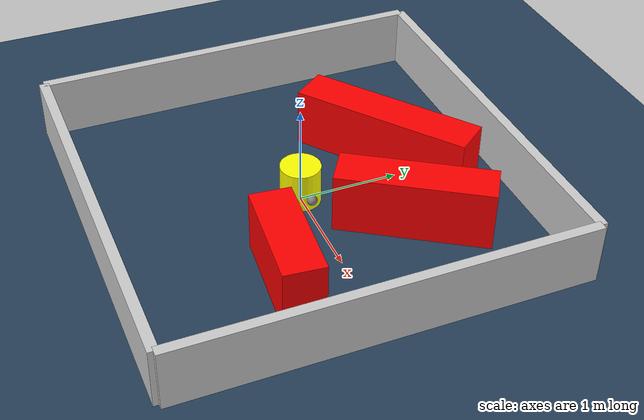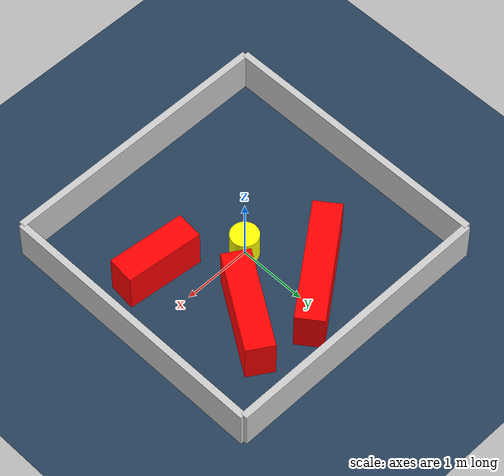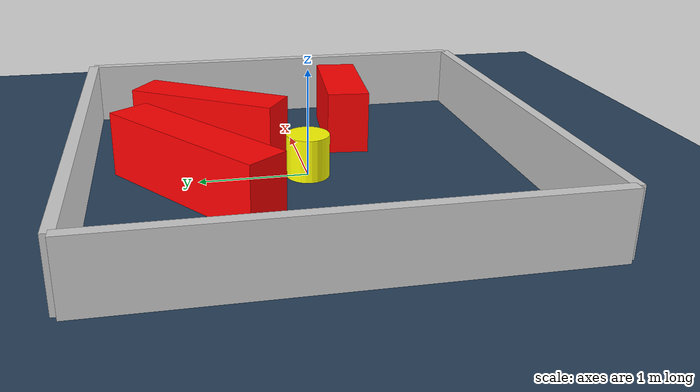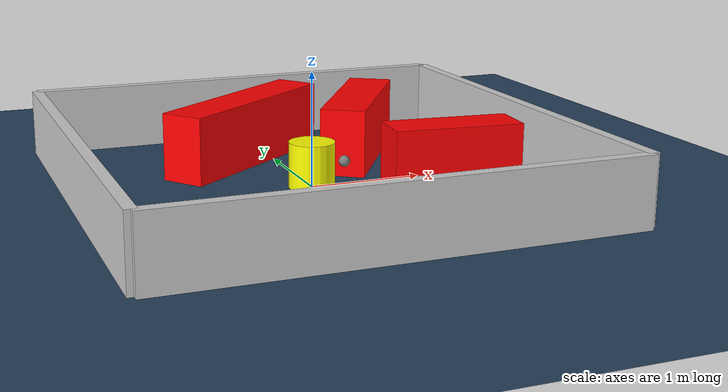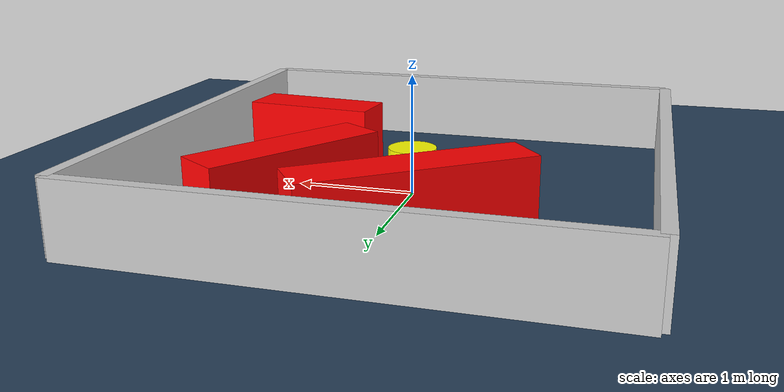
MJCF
<?xml version="1.0" ?>
<mujoco model="generated_environment">
  <option timestep="0.01" integrator="RK4" cone="elliptic"/>
  <default>
    <geom density="1"/>
  </default>
  <asset>
    <texture builtin="gradient" height="3072" rgb1="0.3 0.5 0.7" rgb2="0 0 0" type="skybox" width="512"/>
    <texture builtin="checker" height="300" mark="edge" markrgb="0.8 0.8 0.8" name="groundplane" rgb1="0.2 0.3 0.4" rgb2="0.1 0.2 0.3" type="2d" width="300"/>
    <material name="groundplane" reflectance="0.2" texrepeat="5 5" texture="groundplane" texuniform="true"/>
    <material name="robot" rgba="0.0 1.0 0.0 1"/>
  </asset>
  <worldbody>
    <light dir="0 0 -1" directional="true" pos="0 0 1.5"/>
    <geom condim="4" friction="1.0 0.005 0.001" material="groundplane" name="floor" size="0 0 0.05" type="plane"/>
    <body name="walls">
      <geom name="wall_1" condim="4" pos="-2.0 0.0 0.3" rgba="0.800000011920929 0.800000011920929 0.800000011920929 1.0" size="0.05 2.0 0.3" type="box"/>
      <geom name="wall_2" condim="4" pos="2.0 0.0 0.3" rgba="0.800000011920929 0.800000011920929 0.800000011920929 1.0" size="0.05 2.0 0.3" type="box"/>
      <geom name="wall_3" condim="4" pos="0.0 -2.0 0.3" rgba="0.800000011920929 0.800000011920929 0.800000011920929 1.0" size="2.0 0.05 0.3" type="box"/>
      <geom name="wall_4" condim="4" pos="0.0 2.0 0.3" rgba="0.800000011920929 0.800000011920929 0.800000011920929 1.0" size="2.0 0.05 0.3" type="box"/>
    </body>
    <body name="robot">
      <joint name="joint_x" type="slide" pos="0 0 0" axis="1 0 0"/>
      <joint name="joint_y" type="slide" pos="0 0 0" axis="0 1 0"/>
      <geom name="robot" type="sphere" pos="0.3 0.0 0.2" size="0.05" mass="5." friction="1.0 0.005 0.0001" condim="4" rgba="0.5 0.5 0.5 1.0"/>
      <site name="sensor_ball"/>
    </body>
    <body name="obstacle_movable_1">
      <geom name="obstacle_movable_1" condim="4" pos="0.0 0.0 0.2" euler="0 0 0.0" friction="1.0 0.005 0.001" rgba="1.0 1.0 0.0 1.0" size="0.2 0.2 0.0" type="cylinder" mass="0.1"/>
      <joint type="free"/>
    </body>
    <body name="obstacle_2_static">
      <geom name="obstacle_2_static" condim="4" pos="-0.2835630489167551 1.0416036369405 0.3" euler="0 0 36.946435420858364" friction="1.0 0.005 0.001" rgba="1 0 0 1" size="0.9109246805714071 0.2 0.3" type="box"/>
    </body>
    <body name="obstacle_3_static">
      <geom name="obstacle_3_static" condim="4" pos="1.0475577219105863 -0.5453584421527786 0.3" euler="0 0 354.48608390725116" friction="1.0 0.005 0.001" rgba="1 0 0 1" size="0.5585916296674204 0.2 0.3" type="box"/>
    </body>
    <body name="obstacle_4_static">
      <geom name="obstacle_4_static" condim="4" pos="0.7688857751164937 0.8347195187810195 0.3" euler="0 0 237.15642748250593" friction="1.0 0.005 0.001" rgba="1 0 0 1" size="0.7444172271867958 0.2 0.3" type="box"/>
    </body>
  </worldbody>
  <actuator>
    <motor name="actuator_x" joint="joint_x" gear="1" ctrlrange="-1 1"/>
    <motor name="actuator_y" joint="joint_y" gear="1" ctrlrange="-1 1"/>
  </actuator>
</mujoco>
